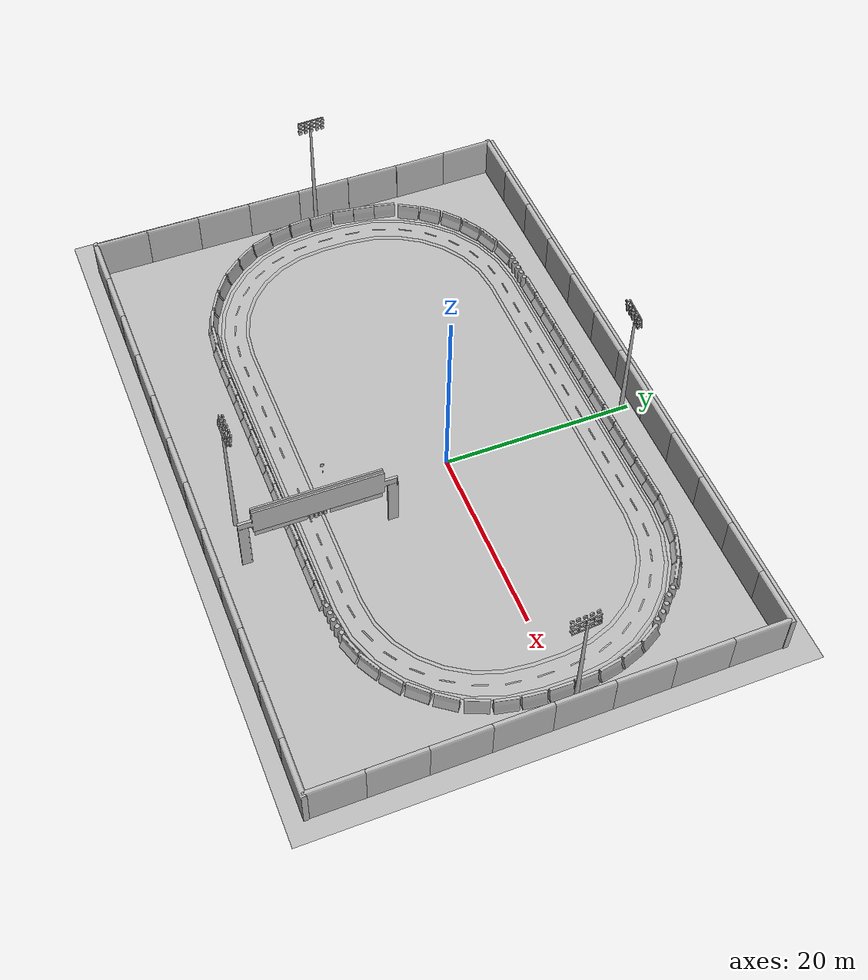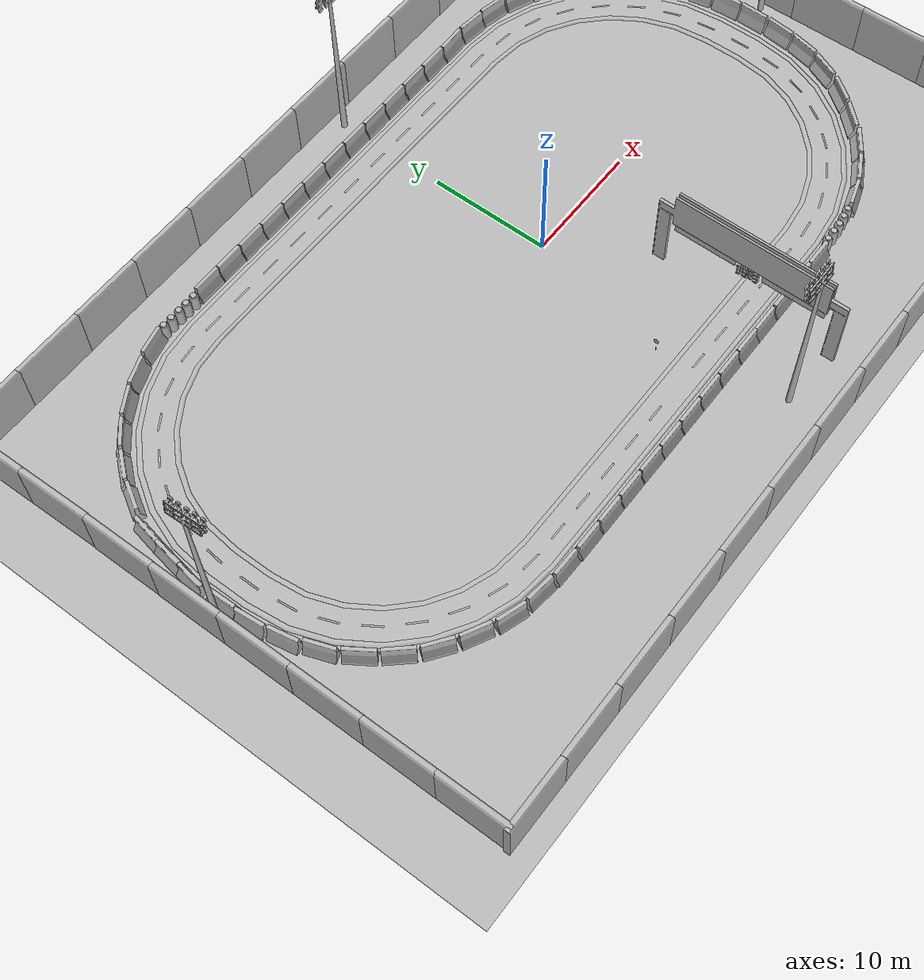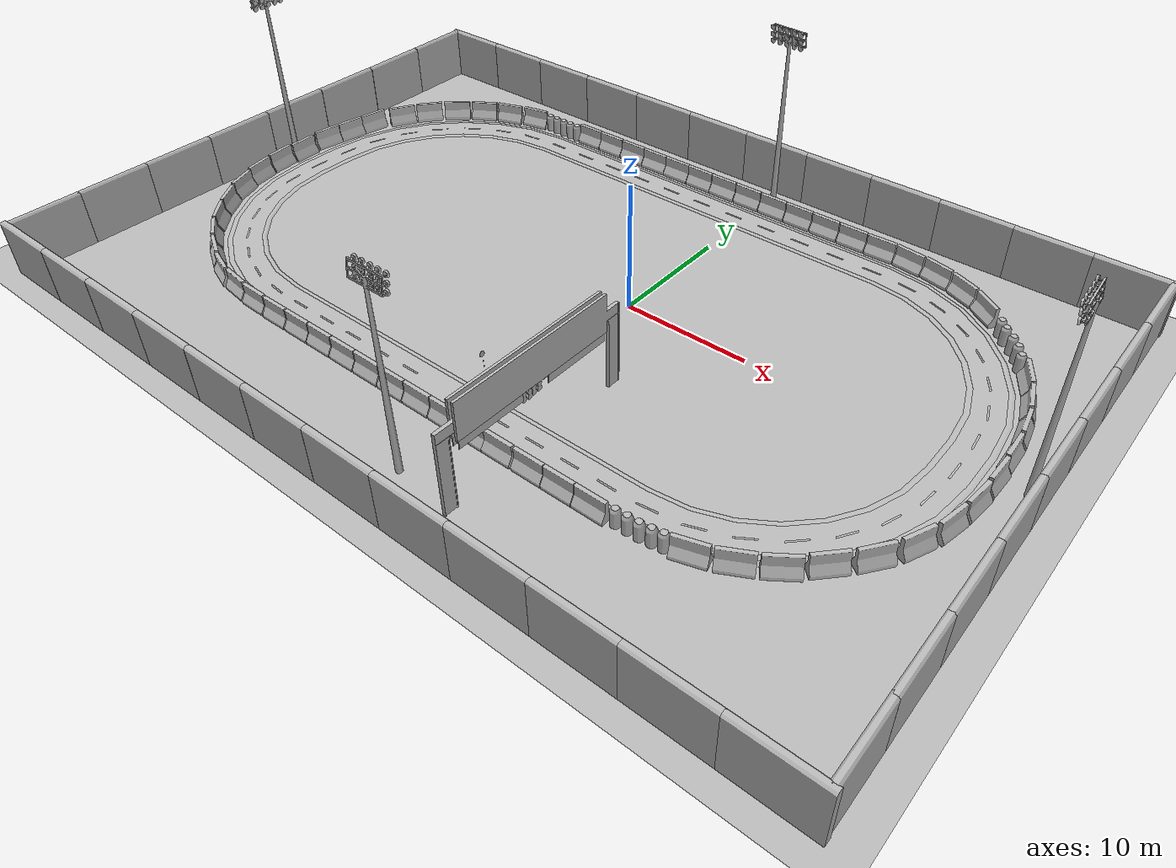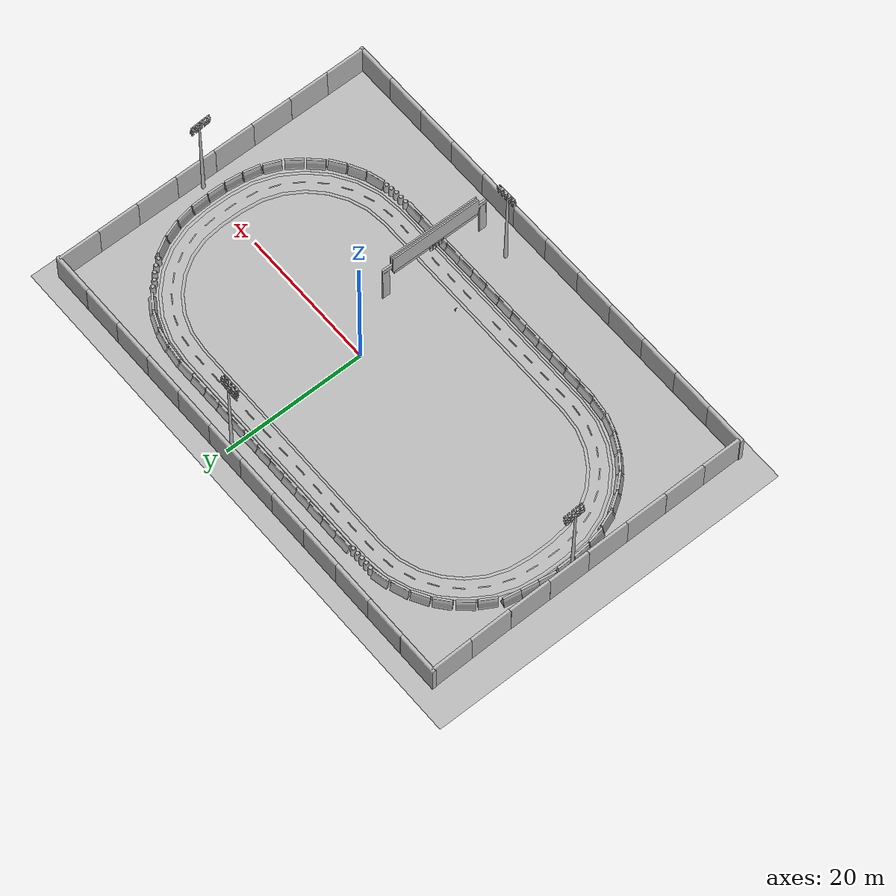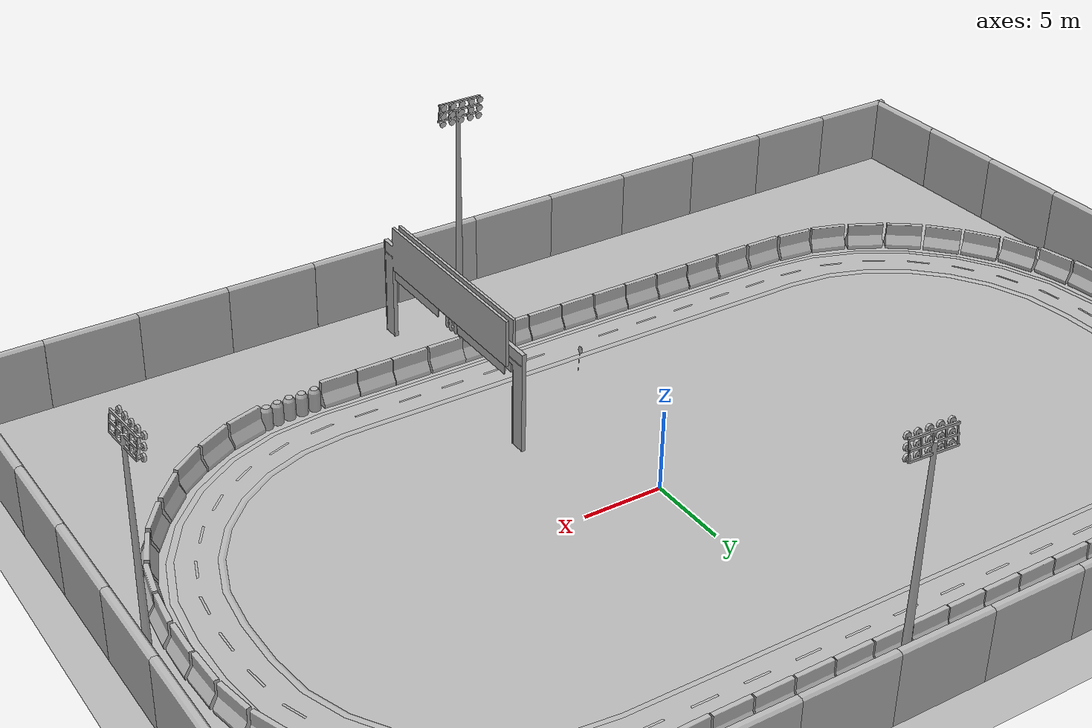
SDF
<sdf version="1.6">
 <world name="default">
  <gravity>0 0 -9.8</gravity>
  <magnetic_field>6e-06 2.3e-05 -4.2e-05</magnetic_field>
  <atmosphere type="adiabatic"/>
  <physics name="default_physics" default="0" type="ode">
   <max_step_size>0.001</max_step_size>
   <real_time_factor>1</real_time_factor>
   <real_time_update_rate>1000</real_time_update_rate>
  </physics>
  <scene><ambient>0.4 0.4 0.4 1</ambient><background>0.7 0.7 0.7 1</background><shadows>1</shadows></scene>
  <spherical_coordinates>
   <surface_model>EARTH_WGS84</surface_model>
   <latitude_deg>0</latitude_deg>
   <longitude_deg>0</longitude_deg>
   <elevation>0</elevation>
   <heading_deg>0</heading_deg>
  </spherical_coordinates>
  <model name="aws_robomaker_racetrack_Billboard_01">
   <include><uri>model://aws_robomaker_racetrack_Billboard_01</uri></include>
   <pose>4.32789 -14.8431 -2e-06 0 1e-06 1.56416</pose>
  </model>
  <model name="aws_robomaker_racetrack_CrashworthBucket_01_10">
   <include><uri>model://aws_robomaker_racetrack_CrashworthBucket_01</uri></include>
   <pose>22.2917 13.5697 0 0 -0 0</pose>
  </model>
  <model name="aws_robomaker_racetrack_CrashworthBucket_01_11">
   <include><uri>model://aws_robomaker_racetrack_CrashworthBucket_01</uri></include>
   <pose>22.9018 12.8693 0.054 0 0 0</pose>
  </model>
  <model name="aws_robomaker_racetrack_CrashworthBucket_01_29">
   <include><uri>model://aws_robomaker_racetrack_CrashworthBucket_01</uri></include>
   <pose>23.6827 12.1956 0.054 0 0 0</pose>
  </model>
  <model name="aws_robomaker_racetrack_CrashworthBucket_01_30">
   <include><uri>model://aws_robomaker_racetrack_CrashworthBucket_01</uri></include>
   <pose>24.3346 11.4874 0.054 0 0 0</pose>
  </model>
  <model name="aws_robomaker_racetrack_CrashworthBucket_01_31">
   <include><uri>model://aws_robomaker_racetrack_CrashworthBucket_01</uri></include>
   <pose>24.8882 10.6788 0.054 0 0 0</pose>
  </model>
  <model name="aws_robomaker_racetrack_FenceMesh_01_00">
   <include><uri>model://aws_robomaker_racetrack_FenceMesh_01</uri></include>
   <pose>4.2331 -11.1761 5.05223 0 0 -0.006038</pose>
  </model>
  <model name="aws_robomaker_racetrack_FenceMesh_01_01">
   <include><uri>model://aws_robomaker_racetrack_FenceMesh_01</uri></include>
   <pose>4.16406 -18.6269 5.05223 0 0 -0.006038</pose>
  </model>
  <model name="aws_robomaker_racetrack_FenceMesh_01_02">
   <include><uri>model://aws_robomaker_racetrack_FenceMesh_01</uri></include>
   <pose>4.63223 -18.6067 5.05223 0 0 -0.006038</pose>
  </model>
  <model name="aws_robomaker_racetrack_FenceMesh_01_03">
   <include><uri>model://aws_robomaker_racetrack_FenceMesh_01</uri></include>
   <pose>4.67467 -11.1966 5.05223 0 0 -0.006038</pose>
  </model>
  <model name="aws_robomaker_racetrack_RaceStartLight_01_00">
   <include><uri>model://aws_robomaker_racetrack_RaceStartLight_01</uri></include>
   <pose>4.13359 -14.1692 5.08709 0 -0 0</pose>
  </model>
  <model name="aws_robomaker_racetrack_RaceStartLight_01_01">
   <include><uri>model://aws_robomaker_racetrack_RaceStartLight_01</uri></include>
   <pose>4.14665 -14.6522 5.08709 0 -0 0</pose>
  </model>
  <model name="aws_robomaker_racetrack_RaceStartLight_01_02">
   <include><uri>model://aws_robomaker_racetrack_RaceStartLight_01</uri></include>
   <pose>4.21676 -15.0918 5.08709 0 -0 0</pose>
  </model>
  <model name="aws_robomaker_racetrack_RaceStartLight_01_03">
   <include><uri>model://aws_robomaker_racetrack_RaceStartLight_01</uri></include>
   <pose>4.17594 -15.5526 5.08709 0 -0 0</pose>
  </model>
  <model name="aws_robomaker_racetrack_StonePier_custom_01">
   <include><uri>model://aws_robomaker_racetrack_StonePier_01</uri></include>
   <pose>8.644873 17.2043 0.054 0 -0.0 0.010048</pose>
  </model>
  <model name="aws_robomaker_racetrack_StonePier_custom_02">
   <include><uri>model://aws_robomaker_racetrack_StonePier_01</uri></include>
   <pose>6.194090 17.2043 0.054 0 -0.0 0.010048</pose>
  </model>
  <model name="aws_robomaker_racetrack_StonePier_custom_03">
   <include><uri>model://aws_robomaker_racetrack_StonePier_01</uri></include>
   <pose>3.746000 17.2043 0.054 0 -0.0 0.010048</pose>
  </model>
  <model name="aws_robomaker_racetrack_StonePier_custom_04">
   <include><uri>model://aws_robomaker_racetrack_StonePier_01</uri></include>
   <pose>1.313230 17.2043 0.054 0 -0.0 0.010048</pose>
  </model>
  <model name="aws_robomaker_racetrack_StonePier_custom_05">
   <include><uri>model://aws_robomaker_racetrack_StonePier_01</uri></include>
   <pose>-1.116790 17.2043 0.054 0 -0.0 0.010048</pose>
  </model>
  <model name="aws_robomaker_racetrack_StonePier_custom_06">
   <include><uri>model://aws_robomaker_racetrack_StonePier_01</uri></include>
   <pose>-3.547695 17.2043 0.054 0 -0.0 0.010048</pose>
  </model>
  <model name="aws_robomaker_racetrack_StonePier_custom_07">
   <include><uri>model://aws_robomaker_racetrack_StonePier_01</uri></include>
   <pose>-5.953370 17.2043 0.054 0 -0.0 0.010048</pose>
  </model>
  <model name="aws_robomaker_racetrack_StonePier_custom_08">
   <include><uri>model://aws_robomaker_racetrack_StonePier_01</uri></include>
   <pose>-8.360940 17.2043 0.054 0 -0.0 0.010048</pose>
  </model>
  <model name="aws_robomaker_racetrack_StonePier_custom_09">
   <include><uri>model://aws_robomaker_racetrack_StonePier_01</uri></include>
   <pose>-10.773300 17.2043 0.054 0 -0.0 0.010048</pose>
  </model>
  <model name="aws_robomaker_racetrack_StonePier_custom_10">
   <include><uri>model://aws_robomaker_racetrack_StonePier_01</uri></include>
   <pose>-13.188203 17.2043 0.054 0 -0.0 0.010048</pose>
  </model>
  <model name="aws_robomaker_racetrack_StonePier_custom_11">
   <include><uri>model://aws_robomaker_racetrack_StonePier_01</uri></include>
   <pose>-15.627900 17.2043 0.054 0 -0.0 0.010048</pose>
  </model>
  <model name="aws_robomaker_racetrack_StonePier_custom_12">
   <include><uri>model://aws_robomaker_racetrack_StonePier_01</uri></include>
   <pose>-18.044000 17.2043 0.054 0 -0.0 0.010048</pose>
  </model>
  <model name="aws_robomaker_racetrack_CrashworthBucket_custom_01">
   <include><uri>model://aws_robomaker_racetrack_CrashworthBucket_01</uri></include>
   <pose>-22.847500 17.055900 0 0 0 0</pose>
  </model>
  <model name="aws_robomaker_racetrack_CrashworthBucket_custom_02">
   <include><uri>model://aws_robomaker_racetrack_CrashworthBucket_01</uri></include>
   <pose>-22.062670 17.055900 0 0 0 0</pose>
  </model>
  <model name="aws_robomaker_racetrack_CrashworthBucket_custom_03">
   <include><uri>model://aws_robomaker_racetrack_CrashworthBucket_01</uri></include>
   <pose>-21.245270 17.055900 0 0 0 0</pose>
  </model>
  <model name="aws_robomaker_racetrack_CrashworthBucket_custom_04">
   <include><uri>model://aws_robomaker_racetrack_CrashworthBucket_01</uri></include>
   <pose>-20.468481 17.055900 0 0 0 0</pose>
  </model>
  <model name="aws_robomaker_racetrack_CrashworthBucket_custom_05">
   <include><uri>model://aws_robomaker_racetrack_CrashworthBucket_01</uri></include>
   <pose>-19.667800 17.055900 0 0 0 0</pose>
  </model>
  <model name="aws_robomaker_racetrack_CrashworthBucket_custom_21">
   <include><uri>model://aws_robomaker_racetrack_CrashworthBucket_01</uri></include>
   <pose>15.722000 -16.747800 0 0 0 0</pose>
  </model>
  <model name="aws_robomaker_racetrack_CrashworthBucket_custom_22">
   <include><uri>model://aws_robomaker_racetrack_CrashworthBucket_01</uri></include>
   <pose>14.965000 -16.879200 0 0 0 0</pose>
  </model>
  <model name="aws_robomaker_racetrack_CrashworthBucket_custom_23">
   <include><uri>model://aws_robomaker_racetrack_CrashworthBucket_01</uri></include>
   <pose>14.151800 -16.982200 0 0 0 0</pose>
  </model>
  <model name="aws_robomaker_racetrack_CrashworthBucket_custom_24">
   <include><uri>model://aws_robomaker_racetrack_CrashworthBucket_01</uri></include>
   <pose>13.336900 -17.012200 0 0 0 0</pose>
  </model>
  <model name="aws_robomaker_racetrack_CrashworthBucket_custom_25">
   <include><uri>model://aws_robomaker_racetrack_CrashworthBucket_01</uri></include>
   <pose>12.489900 -17.042300 0 0 0 0</pose>
  </model>
  <model name="aws_robomaker_racetrack_StonePier_01_05">
   <include><uri>model://aws_robomaker_racetrack_StonePier_01</uri></include>
   <pose>11.0892 17.2043 0.054 0 -0.0 0.029389</pose>
  </model>
  <model name="aws_robomaker_racetrack_StonePier_01_06">
   <include><uri>model://aws_robomaker_racetrack_StonePier_01</uri></include>
   <pose>13.5633 17.1121 0.054 0 -0.0 -0.108086</pose>
  </model>
  <model name="aws_robomaker_racetrack_StonePier_01_07">
   <include><uri>model://aws_robomaker_racetrack_StonePier_01</uri></include>
   <pose>16.0013 16.8104 0.054 0 -0.0 -0.206147</pose>
  </model>
  <model name="aws_robomaker_racetrack_StonePier_01_08">
   <include><uri>model://aws_robomaker_racetrack_StonePier_01</uri></include>
   <pose>18.4263 16.0384 0.054 0 -0.0 -0.379591</pose>
  </model>
  <model name="aws_robomaker_racetrack_StonePier_01_16">
   <include><uri>model://aws_robomaker_racetrack_StonePier_01</uri></include>
   <pose>28.1211 -0.475719 0.054 0 -0.0 -1.59506</pose>
  </model>
  <model name="aws_robomaker_racetrack_StonePier_01_18">
   <include><uri>model://aws_robomaker_racetrack_StonePier_01</uri></include>
   <pose>28.0027 -3.03906 0.054 0 -0.0 -1.68291</pose>
  </model>
  <model name="aws_robomaker_racetrack_StonePier_01_21">
   <include><uri>model://aws_robomaker_racetrack_StonePier_01</uri></include>
   <pose>17.2914 -16.4156 0.054 0 -0.0 0.298911</pose>
  </model>
  <model name="aws_robomaker_racetrack_StonePier_01_22">
   <include><uri>model://aws_robomaker_racetrack_StonePier_01</uri></include>
   <pose>19.6208 -15.4615 0.054 0 -0.0 0.489077</pose>
  </model>
  <model name="aws_robomaker_racetrack_StonePier_01_23">
   <include><uri>model://aws_robomaker_racetrack_StonePier_01</uri></include>
   <pose>21.7939 -14.1476 0.054 0 -0.0 0.61668</pose>
  </model>
  <model name="aws_robomaker_racetrack_StonePier_01_24">
   <include><uri>model://aws_robomaker_racetrack_StonePier_01</uri></include>
   <pose>23.6698 -12.3608 0.054 0 -0.0 0.810318</pose>
  </model>
  <model name="aws_robomaker_racetrack_StonePier_01_25">
   <include><uri>model://aws_robomaker_racetrack_StonePier_01</uri></include>
   <pose>25.3929 -10.3347 0.054 -0 -0.0 0.931507</pose>
  </model>
  <model name="aws_robomaker_racetrack_StonePier_01_26">
   <include><uri>model://aws_robomaker_racetrack_StonePier_01</uri></include>
   <pose>27.7466 4.53211 0.054 0 -0.0 1.75246</pose>
  </model>
  <model name="aws_robomaker_racetrack_StonePier_01_27">
   <include><uri>model://aws_robomaker_racetrack_StonePier_01</uri></include>
   <pose>27.0691 6.99271 0.054 0 -0.0 1.91654</pose>
  </model>
  <model name="aws_robomaker_racetrack_StonePier_01_28">
   <include><uri>model://aws_robomaker_racetrack_StonePier_01</uri></include>
   <pose>26.0366 9.29805 0.054 0 -0.0 2.08782</pose>
  </model>
  <model name="aws_robomaker_racetrack_StonePier_01_29">
   <include><uri>model://aws_robomaker_racetrack_StonePier_01</uri></include>
   <pose>26.7385 -7.99231 0.054 -0 -0.0 1.16098</pose>
  </model>
  <model name="aws_robomaker_racetrack_StonePier_01_30">
   <include><uri>model://aws_robomaker_racetrack_StonePier_01</uri></include>
   <pose>27.5962 -5.54706 0.054 0 -0.0 1.36231</pose>
  </model>
  <model name="aws_robomaker_racetrack_StonePier_01_31">
   <include><uri>model://aws_robomaker_racetrack_StonePier_01</uri></include>
   <pose>28.0314 1.9989 0.054 0 -0.0 -1.53351</pose>
  </model>
  <model name="aws_robomaker_racetrack_StonePier_01_32">
   <include><uri>model://aws_robomaker_racetrack_StonePier_01</uri></include>
   <pose>20.6714 14.8473 0.054 0 -0.0 -0.587598</pose>
  </model>
  <model name="aws_robomaker_racetrack_StonePier_01_37">
   <include><uri>model://aws_robomaker_racetrack_StonePier_01</uri></include>
   <pose>-24.4271 16.8105 0.054 -0 -0.0 0.217772</pose>
  </model>
  <model name="aws_robomaker_racetrack_StonePier_01_40">
   <include><uri>model://aws_robomaker_racetrack_StonePier_01</uri></include>
   <pose>-18.3212 -17.1986 0.054 0 -0.0 -0.000165</pose>
  </model>
  <model name="aws_robomaker_racetrack_StonePier_custom_21">
   <include><uri>model://aws_robomaker_racetrack_StonePier_01</uri></include>
   <pose>-15.840300 -17.1986 0.054 0 -0.0 0</pose>
  </model>
  <model name="aws_robomaker_racetrack_StonePier_custom_22">
   <include><uri>model://aws_robomaker_racetrack_StonePier_01</uri></include>
   <pose>-13.410800 -17.1986 0.054 0 -0.0 0</pose>
  </model>
  <model name="aws_robomaker_racetrack_StonePier_custom_23">
   <include><uri>model://aws_robomaker_racetrack_StonePier_01</uri></include>
   <pose>-10.961800 -17.1986 0.054 0 -0.0 0</pose>
  </model>
  <model name="aws_robomaker_racetrack_StonePier_custom_24">
   <include><uri>model://aws_robomaker_racetrack_StonePier_01</uri></include>
   <pose>-8.533970 -17.1986 0.054 0 -0.0 0</pose>
  </model>
  <model name="aws_robomaker_racetrack_StonePier_custom_25">
   <include><uri>model://aws_robomaker_racetrack_StonePier_01</uri></include>
   <pose>-6.086890 -17.1986 0.054 0 -0.0 0</pose>
  </model>
  <model name="aws_robomaker_racetrack_StonePier_custom_26">
   <include><uri>model://aws_robomaker_racetrack_StonePier_01</uri></include>
   <pose>-3.660220 -17.1986 0.054 0 -0.0 0</pose>
  </model>
  <model name="aws_robomaker_racetrack_StonePier_custom_27">
   <include><uri>model://aws_robomaker_racetrack_StonePier_01</uri></include>
   <pose>-1.234060 -17.1986 0.054 0 -0.0 0</pose>
  </model>
  <model name="aws_robomaker_racetrack_StonePier_custom_28">
   <include><uri>model://aws_robomaker_racetrack_StonePier_01</uri></include>
   <pose>1.183090 -17.1986 0.054 0 -0.0 0</pose>
  </model>
  <model name="aws_robomaker_racetrack_StonePier_custom_29">
   <include><uri>model://aws_robomaker_racetrack_StonePier_01</uri></include>
   <pose>3.519140 -17.1986 0.054 0 -0.0 0</pose>
  </model>
  <model name="aws_robomaker_racetrack_StonePier_custom_30">
   <include><uri>model://aws_robomaker_racetrack_StonePier_01</uri></include>
   <pose>6.019380 -17.1986 0.054 0 -0.0 0</pose>
  </model>
  <model name="aws_robomaker_racetrack_StonePier_custom_31">
   <include><uri>model://aws_robomaker_racetrack_StonePier_01</uri></include>
   <pose>8.421080 -17.1986 0.054 0 -0.0 0</pose>
  </model>
  <model name="aws_robomaker_racetrack_StonePier_custom_32">
   <include><uri>model://aws_robomaker_racetrack_StonePier_01</uri></include>
   <pose>10.827000 -17.1986 0.054 0 -0.0 0</pose>
  </model>
  <model name="aws_robomaker_racetrack_StonePier_01_52">
   <include><uri>model://aws_robomaker_racetrack_StonePier_01</uri></include>
   <pose>-28.2666 -15.3279 0.054 0 0.00036 -0.483595</pose>
  </model>
  <model name="aws_robomaker_racetrack_StonePier_01_53">
   <include><uri>model://aws_robomaker_racetrack_StonePier_01</uri></include>
   <pose>-30.4813 -13.931 0.054 0 -0.0 2.50624</pose>
  </model>
  <model name="aws_robomaker_racetrack_StonePier_01_54">
   <include><uri>model://aws_robomaker_racetrack_StonePier_01</uri></include>
   <pose>-32.3931 -12.181 0.054 0 -0.0 2.30053</pose>
  </model>
  <model name="aws_robomaker_racetrack_StonePier_01_55">
   <include><uri>model://aws_robomaker_racetrack_StonePier_01</uri></include>
   <pose>-33.9725 -10.1825 0.054 0 -0.0 2.15404</pose>
  </model>
  <model name="aws_robomaker_racetrack_StonePier_01_56">
   <include><uri>model://aws_robomaker_racetrack_StonePier_01</uri></include>
   <pose>-35.2144 -7.92381 0.054 0 -0.0 1.91826</pose>
  </model>
  <model name="aws_robomaker_racetrack_StonePier_01_57">
   <include><uri>model://aws_robomaker_racetrack_StonePier_01</uri></include>
   <pose>-36.4999 -3.03273 0.054 -0 0.00036 -1.47965</pose>
  </model>
  <model name="aws_robomaker_racetrack_StonePier_01_58">
   <include><uri>model://aws_robomaker_racetrack_StonePier_01</uri></include>
   <pose>-36.5369 -0.578473 -0.000468 -0 0.000348 1.59189</pose>
  </model>
  <model name="aws_robomaker_racetrack_StonePier_01_59">
   <include><uri>model://aws_robomaker_racetrack_StonePier_01</uri></include>
   <pose>-36.0789 -5.53149 0.054 0 -0.0 1.76121</pose>
  </model>
  <model name="aws_robomaker_racetrack_StonePier_01_60">
   <include><uri>model://aws_robomaker_racetrack_StonePier_01</uri></include>
   <pose>-36.5742 2.13483 -4.9e-05 -4.8e-05 -6.2e-05 1.40891</pose>
  </model>
  <model name="aws_robomaker_racetrack_StonePier_01_61">
   <include><uri>model://aws_robomaker_racetrack_StonePier_01</uri></include>
   <pose>-36.1891 4.48288 0.000698 -7e-05 -0.000662 1.40758</pose>
  </model>
  <model name="aws_robomaker_racetrack_StonePier_01_62">
   <include><uri>model://aws_robomaker_racetrack_StonePier_01</uri></include>
   <pose>-35.7706 6.79941 0.00067 5.5e-05 0.000534 1.37633</pose>
  </model>
  <model name="aws_robomaker_racetrack_StonePier_01_63">
   <include><uri>model://aws_robomaker_racetrack_StonePier_01</uri></include>
   <pose>-34.5101 9.28526 0.054 0 -0.0 1.03684</pose>
  </model>
  <model name="aws_robomaker_racetrack_StonePier_01_64">
   <include><uri>model://aws_robomaker_racetrack_StonePier_01</uri></include>
   <pose>-33.1083 11.4014 0.054 0 -0.0 0.877747</pose>
  </model>
  <model name="aws_robomaker_racetrack_StonePier_01_65">
   <include><uri>model://aws_robomaker_racetrack_StonePier_01</uri></include>
   <pose>-31.2882 13.312 0.054 -0 -0.0 0.701782</pose>
  </model>
  <model name="aws_robomaker_racetrack_StonePier_01_66">
   <include><uri>model://aws_robomaker_racetrack_StonePier_01</uri></include>
   <pose>-29.1909 14.829 0.054 0 -0.0 0.529025</pose>
  </model>
  <model name="aws_robomaker_racetrack_StonePier_01_67">
   <include><uri>model://aws_robomaker_racetrack_StonePier_01</uri></include>
   <pose>-26.9181 15.9588 0.054 0 -0.0 0.349577</pose>
  </model>
  <model name="aws_robomaker_racetrack_StonePier_01_68">
   <include><uri>model://aws_robomaker_racetrack_StonePier_01</uri></include>
   <pose>-20.8526 -17.1365 0.054 -0 0.00036 -0.016586</pose>
  </model>
  <model name="aws_robomaker_racetrack_StonePier_01_69">
   <include><uri>model://aws_robomaker_racetrack_StonePier_01</uri></include>
   <pose>-23.3756 -16.9024 0.054 0 -0.0 -0.119704</pose>
  </model>
  <model name="aws_robomaker_racetrack_StonePier_01_70">
   <include><uri>model://aws_robomaker_racetrack_StonePier_01</uri></include>
   <pose>-25.8909 -16.4126 0.054 0 -0.0 -0.32217</pose>
  </model>
  <model name="aws_robomaker_racetrack_StopSign_01_00">
   <include><uri>model://aws_robomaker_racetrack_StopSign_01</uri></include>
   <pose>-2.7487 -12.1054 0.000775 0.075944 0.005053 -1.56731</pose>
  </model>
  <model name="aws_robomaker_racetrack_Track_05_00">
   <include><uri>model://aws_robomaker_racetrack_Track_05</uri></include>
   <pose>0 0 0.051 0 -0 0</pose>
  </model>
  <model name="aws_robomaker_racetrack_Trackline_01_00">
   <include><uri>model://aws_robomaker_racetrack_Trackline_01</uri></include>
   <pose>-4.24539 0 0.102 0 -0 0</pose>
  </model>
  <model name="aws_robomaker_racetrack_Ground_01_00">
   <include><uri>model://aws_robomaker_racetrack_Ground_01</uri></include>
   <pose>-4.9 -2 0.05 0 -0 0</pose>
  </model>
  <model name="aws_robomaker_racetrack_Light_01_00">
   <include><uri>model://aws_robomaker_racetrack_Light_01</uri></include>
   <pose>-0.355802 -21.7691 0 0 -0 0</pose>
  </model>
  <model name="aws_robomaker_racetrack_Light_01_01">
   <include><uri>model://aws_robomaker_racetrack_Light_01</uri></include>
   <pose>0.041158 19.0887 0 0 -0 3.09146</pose>
  </model>
  <model name="aws_robomaker_racetrack_Light_01_02">
   <include><uri>model://aws_robomaker_racetrack_Light_01</uri></include>
   <pose>29.8469 -0.049215 0 0 -0 1.63215</pose>
  </model>
  <model name="aws_robomaker_racetrack_Light_01_03">
   <include><uri>model://aws_robomaker_racetrack_Light_01</uri></include>
   <pose>-37.2567 -0.808964 0 0 0 -1.52672</pose>
  </model>
  <model name="aws_robomaker_racetrack_Wall_01_00">
   <include><uri>model://aws_robomaker_racetrack_Wall_01</uri></include>
   <pose>10.772 20.6862 0 0 -0 0</pose>
  </model>
  <model name="aws_robomaker_racetrack_Wall_01_01">
   <include><uri>model://aws_robomaker_racetrack_Wall_01</uri></include>
   <pose>4.94795 20.6846 0 0 -0 0</pose>
  </model>
  <model name="aws_robomaker_racetrack_Wall_01_02">
   <include><uri>model://aws_robomaker_racetrack_Wall_01</uri></include>
   <pose>-0.883158 20.684 0 0 -0 0</pose>
  </model>
  <model name="aws_robomaker_racetrack_Wall_01_03">
   <include><uri>model://aws_robomaker_racetrack_Wall_01</uri></include>
   <pose>-6.71068 20.6834 0 0 -0 0</pose>
  </model>
  <model name="aws_robomaker_racetrack_Wall_01_04">
   <include><uri>model://aws_robomaker_racetrack_Wall_01</uri></include>
   <pose>-12.5489 20.683 0 0 -0 0</pose>
  </model>
  <model name="aws_robomaker_racetrack_Wall_01_05">
   <include><uri>model://aws_robomaker_racetrack_Wall_01</uri></include>
   <pose>-18.3809 20.685 0 0 -0 0</pose>
  </model>
  <model name="aws_robomaker_racetrack_Wall_01_06">
   <include><uri>model://aws_robomaker_racetrack_Wall_01</uri></include>
   <pose>-24.2154 20.6835 0 0 -0 0</pose>
  </model>
  <model name="aws_robomaker_racetrack_Wall_01_07">
   <include><uri>model://aws_robomaker_racetrack_Wall_01</uri></include>
   <pose>-30.0218 20.682 0 0 -0 0</pose>
  </model>
  <model name="aws_robomaker_racetrack_Wall_01_08">
   <include><uri>model://aws_robomaker_racetrack_Wall_01</uri></include>
   <pose>-35.8134 20.6795 0 0 -0 0</pose>
  </model>
  <model name="aws_robomaker_racetrack_Wall_01_09">
   <include><uri>model://aws_robomaker_racetrack_Wall_01</uri></include>
   <pose>-35.6316 -25.5235 0 0 -0 3.14066</pose>
  </model>
  <model name="aws_robomaker_racetrack_Wall_01_10">
   <include><uri>model://aws_robomaker_racetrack_Wall_01</uri></include>
   <pose>-29.8183 -25.5224 0 0 -0 0</pose>
  </model>
  <model name="aws_robomaker_racetrack_Wall_01_11">
   <include><uri>model://aws_robomaker_racetrack_Wall_01</uri></include>
   <pose>-23.9919 -25.5182 0 0 -0 0</pose>
  </model>
  <model name="aws_robomaker_racetrack_Wall_01_12">
   <include><uri>model://aws_robomaker_racetrack_Wall_01</uri></include>
   <pose>-18.1656 -25.5178 0 0 -0 0</pose>
  </model>
  <model name="aws_robomaker_racetrack_Wall_01_13">
   <include><uri>model://aws_robomaker_racetrack_Wall_01</uri></include>
   <pose>-12.3608 -25.513 0 0 -0 0</pose>
  </model>
  <model name="aws_robomaker_racetrack_Wall_01_14">
   <include><uri>model://aws_robomaker_racetrack_Wall_01</uri></include>
   <pose>-6.53417 -25.5081 0 0 -0 0</pose>
  </model>
  <model name="aws_robomaker_racetrack_Wall_01_15">
   <include><uri>model://aws_robomaker_racetrack_Wall_01</uri></include>
   <pose>-0.701372 -25.5056 0 0 -0 0</pose>
  </model>
  <model name="aws_robomaker_racetrack_Wall_01_16">
   <include><uri>model://aws_robomaker_racetrack_Wall_01</uri></include>
   <pose>5.12343 -25.507 0 0 -0 0</pose>
  </model>
  <model name="aws_robomaker_racetrack_Wall_01_17">
   <include><uri>model://aws_robomaker_racetrack_Wall_01</uri></include>
   <pose>10.9489 -25.511 0 0 -0 0</pose>
  </model>
  <model name="aws_robomaker_racetrack_Wall_01_18">
   <include><uri>model://aws_robomaker_racetrack_Wall_01</uri></include>
   <pose>16.7552 -25.5119 0 0 -0 0</pose>
  </model>
  <model name="aws_robomaker_racetrack_Wall_01_19">
   <include><uri>model://aws_robomaker_racetrack_Wall_01</uri></include>
   <pose>22.5772 -25.5071 0 0 -0 0</pose>
  </model>
  <model name="aws_robomaker_racetrack_Wall_01_20">
   <include><uri>model://aws_robomaker_racetrack_Wall_01</uri></include>
   <pose>28.3975 -25.5099 0 0 -0 0</pose>
  </model>
  <model name="aws_robomaker_racetrack_Wall_01_21">
   <include><uri>model://aws_robomaker_racetrack_Wall_01</uri></include>
   <pose>16.5737 20.6849 0 0 -0 0</pose>
  </model>
  <model name="aws_robomaker_racetrack_Wall_01_22">
   <include><uri>model://aws_robomaker_racetrack_Wall_01</uri></include>
   <pose>22.3987 20.6806 0 0 -0 0</pose>
  </model>
  <model name="aws_robomaker_racetrack_Wall_01_23">
   <include><uri>model://aws_robomaker_racetrack_Wall_01</uri></include>
   <pose>28.2373 20.6833 0 0 -0 0</pose>
  </model>
  <model name="aws_robomaker_racetrack_Wall_01_24">
   <include><uri>model://aws_robomaker_racetrack_Wall_01</uri></include>
   <pose>-38.3722 17.8758 0 0 -0 1.58903</pose>
  </model>
  <model name="aws_robomaker_racetrack_Wall_01_25">
   <include><uri>model://aws_robomaker_racetrack_Wall_01</uri></include>
   <pose>-38.2759 12.1211 0 0 -0 1.58713</pose>
  </model>
  <model name="aws_robomaker_racetrack_Wall_01_26">
   <include><uri>model://aws_robomaker_racetrack_Wall_01</uri></include>
   <pose>-38.2483 6.29377 0 0 -0 1.57459</pose>
  </model>
  <model name="aws_robomaker_racetrack_Wall_01_27">
   <include><uri>model://aws_robomaker_racetrack_Wall_01</uri></include>
   <pose>-38.2488 0.480728 0 0 -0 1.57459</pose>
  </model>
  <model name="aws_robomaker_racetrack_Wall_01_28">
   <include><uri>model://aws_robomaker_racetrack_Wall_01</uri></include>
   <pose>-38.2283 -5.33883 0 0 -0 1.57459</pose>
  </model>
  <model name="aws_robomaker_racetrack_Wall_01_29">
   <include><uri>model://aws_robomaker_racetrack_Wall_01</uri></include>
   <pose>-38.2023 -11.1666 0 0 -0 1.57459</pose>
  </model>
  <model name="aws_robomaker_racetrack_Wall_01_30">
   <include><uri>model://aws_robomaker_racetrack_Wall_01</uri></include>
   <pose>-38.1849 -16.999 0 0 -0 1.57459</pose>
  </model>
  <model name="aws_robomaker_racetrack_Wall_01_31">
   <include><uri>model://aws_robomaker_racetrack_Wall_01</uri></include>
   <pose>-38.1615 -22.7433 0 0 -0 1.57459</pose>
  </model>
  <model name="aws_robomaker_racetrack_Wall_01_32">
   <include><uri>model://aws_robomaker_racetrack_Wall_01</uri></include>
   <pose>30.9522 -17.1105 0 0 -0 1.57459</pose>
  </model>
  <model name="aws_robomaker_racetrack_Wall_01_33">
   <include><uri>model://aws_robomaker_racetrack_Wall_01</uri></include>
   <pose>30.9711 -22.7005 0 0 -0 1.57459</pose>
  </model>
  <model name="aws_robomaker_racetrack_Wall_01_34">
   <include><uri>model://aws_robomaker_racetrack_Wall_01</uri></include>
   <pose>30.9317 -11.3127 0 0 -0 1.57459</pose>
  </model>
  <model name="aws_robomaker_racetrack_Wall_01_35">
   <include><uri>model://aws_robomaker_racetrack_Wall_01</uri></include>
   <pose>30.9092 -5.49982 0 0 -0 1.57459</pose>
  </model>
  <model name="aws_robomaker_racetrack_Wall_01_36">
   <include><uri>model://aws_robomaker_racetrack_Wall_01</uri></include>
   <pose>30.8878 0.333623 0 0 -0 1.57459</pose>
  </model>
  <model name="aws_robomaker_racetrack_Wall_01_37">
   <include><uri>model://aws_robomaker_racetrack_Wall_01</uri></include>
   <pose>30.8663 6.16983 0 0 -0 1.57459</pose>
  </model>
  <model name="aws_robomaker_racetrack_Wall_01_38">
   <include><uri>model://aws_robomaker_racetrack_Wall_01</uri></include>
   <pose>30.8445 11.977 0 0 -0 1.57459</pose>
  </model>
  <model name="aws_robomaker_racetrack_Wall_01_39">
   <include><uri>model://aws_robomaker_racetrack_Wall_01</uri></include>
   <pose>30.8212 17.8155 0 0 -0 1.57459</pose>
  </model>
  <model name="ground_plane">
   <pose>0 0 -1 0 -0 0</pose>
   <scale>1 1 1</scale>
   <link name="link">
    <pose>0 0 -1 0 -0 0</pose>
    <velocity>0 0 0 0 -0 0</velocity>
    <acceleration>0 0 0 0 -0 0</acceleration>
   </link>
  </model>
  <light name="sun" type="directional">
   <pose>0 0 10 0 0 0</pose>
   <diffuse>1 1 1 1</diffuse>
   <specular>1 1 1 1</specular>
   <attenuation>
    <range>1000</range>
    <constant>0.9</constant>
    <linear>0.01</linear>
    <quadratic>0.001</quadratic>
   </attenuation>
   <direction>-0.5 0.1 -0.9</direction>
  </light>
  <light name="sun2" type="directional">
   <pose>0 0 10 0 0 0</pose>
   <diffuse>1 1 1 1</diffuse>
   <specular>1 1 1 1</specular>
   <attenuation>
    <range>1000</range>
    <constant>0.9</constant>
    <linear>0.01</linear>
    <quadratic>0.001</quadratic>
   </attenuation>
   <direction>-0.5 0.1 -0.9</direction>
  </light>
  <light name="user_point_light_0" type="point">
   <pose>1.49278 -15.5363 1 0 -0 0</pose>
   <diffuse>0 0.98039 0 1</diffuse>
   <specular>0.1 0.1 0.1 1</specular>
   <attenuation>
    <range>0.3</range>
    <constant>0.02</constant>
    <linear>0.01</linear>
    <quadratic>0</quadratic>
   </attenuation>
   <cast_shadows>0</cast_shadows>
   <direction>0 0 -1</direction>
  </light>
  <light name="user_point_light_1" type="point">
   <pose>6.99411 -11.55 1 0 -0 0</pose>
   <diffuse>0 0.98039 0 1</diffuse>
   <specular>0.1 0.1 0.1 1</specular>
   <attenuation>
    <range>0.3</range>
    <constant>0.02</constant>
    <linear>0.01</linear>
    <quadratic>0</quadratic>
   </attenuation>
   <cast_shadows>0</cast_shadows>
   <direction>0 0 -1</direction>
  </light>
  <light name="user_point_light_2" type="point">
   <pose>5.65528 -14.8924 1 0 -0 0</pose>
   <diffuse>0 0.98039 0 1</diffuse>
   <specular>0.1 0.1 0.1 1</specular>
   <attenuation>
    <range>0.3</range>
    <constant>0.02</constant>
    <linear>0.01</linear>
    <quadratic>0</quadratic>
   </attenuation>
   <cast_shadows>0</cast_shadows>
   <direction>0 0 -1</direction>
  </light>
  <light name="user_point_light_3" type="point">
   <pose>3.6452 -17.3437 1 0 -0 0</pose>
   <diffuse>0 0.98039 0 1</diffuse>
   <specular>0.1 0.1 0.1 1</specular>
   <attenuation>
    <range>0.3</range>
    <constant>0.02</constant>
    <linear>0.01</linear>
    <quadratic>0</quadratic>
   </attenuation>
   <cast_shadows>0</cast_shadows>
   <direction>0 0 -1</direction>
  </light>
 </world>
</sdf>

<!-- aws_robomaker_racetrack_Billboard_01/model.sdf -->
<sdf version='1.6'>
  <model name='aws_Billboard_01'>
    <link name='body'>
      <pose frame=''>0 0 0 0 -0 0</pose>
      <self_collide>0</self_collide>
      <kinematic>0</kinematic>
      <gravity>1</gravity>
      <inertial>
        <mass>1000</mass>
        <pose frame=''>0 0 0 0 -0 0</pose>
        <inertia>
          <ixx>1</ixx>
          <ixy>0</ixy>
          <ixz>0</ixz>
          <iyy>1</iyy>
          <iyz>0</iyz>
          <izz>1</izz>
        </inertia>
      </inertial>
      <visual name='visual'>
        <geometry>
          <mesh>
            <uri>models/aws_robomaker_racetrack_Billboard_01/meshes/aws_Billboard_01_visual.obj</uri>
            <scale>0.01 0.01 0.01</scale>
          </mesh>
        </geometry>
        <material>
          <shader type='pixel'>
            <normal_map>__default__</normal_map>
          </shader>
        </material>
        <pose frame=''>0 0 0 0 -0 0</pose>
        <cast_shadows>1</cast_shadows>
        <transparency>0</transparency>
        <meta>
          <layer>2</layer>
        </meta>
      </visual>

    </link>
    <static>true</static>
  </model>
</sdf>

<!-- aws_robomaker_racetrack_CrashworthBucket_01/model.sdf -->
<sdf version='1.6'>
  <model name='aws_CrashworthBucket_01'>
    <link name='body'>
      <pose frame=''>0 0 0 0 -0 0</pose>
      <self_collide>0</self_collide>
      <kinematic>0</kinematic>
      <gravity>1</gravity>
      <inertial>
        <mass>5</mass>
        <pose frame=''>0 0 0 0 -0 0</pose>
        <inertia>
          <ixx>1</ixx>
          <ixy>0</ixy>
          <ixz>0</ixz>
          <iyy>1</iyy>
          <iyz>0</iyz>
          <izz>1</izz>
        </inertia>
      </inertial>
      <visual name='visual'>
        <geometry>
          <mesh>
            <uri>file://models/aws_robomaker_racetrack_CrashworthBucket_01/meshes/aws_CrashworthBucket_01_visual.obj</uri>
            <scale>0.01 0.01  0.01 </scale>
          </mesh>
        </geometry>
        <material>
          <shader type='pixel'>
            <normal_map>__default__</normal_map>
          </shader>
        </material>
        <pose frame=''>0 0 0 0 -0 0</pose>
        <cast_shadows>1</cast_shadows>
        <transparency>0</transparency>
        <meta>
          <layer>0</layer>
        </meta>
      </visual>
      <collision name='collision_0'>
        <laser_retro>0</laser_retro>
        <max_contacts>10</max_contacts>
        <pose frame=''>0 0 0 0 -0 0</pose>
        <geometry>
          <mesh>
            <uri>file://models/aws_robomaker_racetrack_CrashworthBucket_01/meshes/aws_CrashworthBucket_01_collision.obj</uri>
            <scale>0.01 0.01  0.01 </scale>
          </mesh>
        </geometry>
        <surface>
          <friction>
            <ode>
              <mu>1</mu>
              <mu2>1</mu2>
              <fdir1>0 0 0</fdir1>
              <slip1>0</slip1>
              <slip2>0</slip2>
            </ode>
            <torsional>
              <coefficient>1</coefficient>
              <patch_radius>0</patch_radius>
              <surface_radius>0</surface_radius>
              <use_patch_radius>1</use_patch_radius>
              <ode>
                <slip>0</slip>
              </ode>
            </torsional>
          </friction>
          <bounce>
            <restitution_coefficient>0</restitution_coefficient>
            <threshold>1e+06</threshold>
          </bounce>
          <contact>
            <collide_without_contact>0</collide_without_contact>
            <collide_without_contact_bitmask>1</collide_without_contact_bitmask>
            <collide_bitmask>1</collide_bitmask>
            <ode>
              <soft_cfm>0</soft_cfm>
              <soft_erp>0.2</soft_erp>
              <kp>1e+13</kp>
              <kd>1</kd>
              <max_vel>0.01</max_vel>
              <min_depth>0</min_depth>
            </ode>
            <bullet>
              <split_impulse>1</split_impulse>
              <split_impulse_penetration_threshold>-0.01</split_impulse_penetration_threshold>
              <soft_cfm>0</soft_cfm>
              <soft_erp>0.2</soft_erp>
              <kp>1e+13</kp>
              <kd>1</kd>
            </bullet>
          </contact>
        </surface>
      </collision>
    </link>
    <static>true</static>
  </model>
</sdf>

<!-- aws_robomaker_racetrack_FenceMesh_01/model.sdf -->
<sdf version='1.6'>
  <model name='aws_FenceMesh_01'>
    <link name='body'>
      <pose frame=''>0 0 0 0 -0 0</pose>
      <inertial>
        <mass>1</mass>
        <pose frame=''>0 0 0 0 -0 0</pose>
        <inertia>
          <ixx>1</ixx>
          <ixy>0</ixy>
          <ixz>0</ixz>
          <iyy>1</iyy>
          <iyz>0</iyz>
          <izz>1</izz>
        </inertia>
      </inertial>
      <self_collide>0</self_collide>
      <kinematic>0</kinematic>
      <gravity>1</gravity>
      <visual name='visual'>
        <geometry>
          <mesh>
            <uri>file://models/aws_robomaker_racetrack_FenceMesh_01/meshes/aws_FenceMesh_01_visual.obj</uri>
            <scale>0.01 0.01 0.01</scale>
          </mesh>
        </geometry>
        <material>
          <shader type='pixel'>
            <normal_map>__default__</normal_map>
          </shader>
        </material>
        <pose frame=''>0 0 0 0 -0 0</pose>
        <cast_shadows>1</cast_shadows>
        <transparency>0</transparency>
        <meta>
          <layer>2</layer>
        </meta>
      </visual>
      <collision name='collision_0'>
        <laser_retro>0</laser_retro>
        <max_contacts>10</max_contacts>
        <pose frame=''>0 0 0 0 -0 0</pose>
        <geometry>
          <mesh>
            <uri>file://models/aws_robomaker_racetrack_FenceMesh_01/meshes/aws_FenceMesh_01_collision.obj</uri>
            <scale>0.01 0.01 0.01</scale>
          </mesh>
        </geometry>
        <surface>
          <friction>
            <ode>
              <mu>1</mu>
              <mu2>1</mu2>
              <fdir1>0 0 0</fdir1>
              <slip1>0</slip1>
              <slip2>0</slip2>
            </ode>
            <torsional>
              <coefficient>1</coefficient>
              <patch_radius>0</patch_radius>
              <surface_radius>0</surface_radius>
              <use_patch_radius>1</use_patch_radius>
              <ode>
                <slip>0</slip>
              </ode>
            </torsional>
          </friction>
          <bounce>
            <restitution_coefficient>0</restitution_coefficient>
            <threshold>1e+06</threshold>
          </bounce>
          <contact>
            <collide_without_contact>0</collide_without_contact>
            <collide_without_contact_bitmask>1</collide_without_contact_bitmask>
            <collide_bitmask>2</collide_bitmask>
            <ode>
              <soft_cfm>0</soft_cfm>
              <soft_erp>0.2</soft_erp>
              <kp>1e+13</kp>
              <kd>1</kd>
              <max_vel>0.01</max_vel>
              <min_depth>0</min_depth>
            </ode>
            <bullet>
              <split_impulse>1</split_impulse>
              <split_impulse_penetration_threshold>-0.01</split_impulse_penetration_threshold>
              <soft_cfm>0</soft_cfm>
              <soft_erp>0.2</soft_erp>
              <kp>1e+13</kp>
              <kd>1</kd>
            </bullet>
          </contact>
        </surface>
      </collision>
    </link>
    <static>1</static>
    <allow_auto_disable>1</allow_auto_disable>
  </model>
</sdf>

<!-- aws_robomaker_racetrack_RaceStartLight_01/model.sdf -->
<sdf version='1.6'>
  <model name='aws_RaceStartLight_01'>
    <link name='body'>
      <pose frame=''>0 0 0 0 -0 0</pose>
      <inertial>
        <mass>1</mass>
        <pose frame=''>0 0 0 0 -0 0</pose>
        <inertia>
          <ixx>1</ixx>
          <ixy>0</ixy>
          <ixz>0</ixz>
          <iyy>1</iyy>
          <iyz>0</iyz>
          <izz>1</izz>
        </inertia>
      </inertial>
      <self_collide>0</self_collide>
      <kinematic>0</kinematic>
      <gravity>1</gravity>
      <visual name='visual'>
        <geometry>
          <mesh>
            <uri>file://models/aws_robomaker_racetrack_RaceStartLight_01/meshes/aws_RaceStartLight_01_visual.obj</uri>
            <scale>0.01 0.01 0.01</scale>
          </mesh>
        </geometry>
        <material>
          <shader type='pixel'>
            <normal_map>__default__</normal_map>
          </shader>
        </material>
        <pose frame=''>0 0 0 0 -0 0</pose>
        <cast_shadows>1</cast_shadows>
        <transparency>0</transparency>
        <meta>
          <layer>2</layer>
        </meta>
      </visual>
      <collision name='collision_1'>
        <laser_retro>0</laser_retro>
        <max_contacts>10</max_contacts>
        <pose frame=''>0 0 0 0 -0 0</pose>
        <geometry>
          <mesh>
            <uri>file://models/aws_robomaker_racetrack_RaceStartLight_01/meshes/aws_RaceStartLight_01_collision.obj</uri>
            <scale>0.01 0.01 0.01</scale>
          </mesh>
        </geometry>
        <surface>
          <friction>
            <ode>
              <mu>1</mu>
              <mu2>1</mu2>
              <fdir1>0 0 0</fdir1>
              <slip1>0</slip1>
              <slip2>0</slip2>
            </ode>
            <torsional>
              <coefficient>1</coefficient>
              <patch_radius>0</patch_radius>
              <surface_radius>0</surface_radius>
              <use_patch_radius>1</use_patch_radius>
              <ode>
                <slip>0</slip>
              </ode>
            </torsional>
          </friction>
          <bounce>
            <restitution_coefficient>0</restitution_coefficient>
            <threshold>1e+06</threshold>
          </bounce>
          <contact>
            <collide_without_contact>0</collide_without_contact>
            <collide_without_contact_bitmask>1</collide_without_contact_bitmask>
            <collide_bitmask>2</collide_bitmask>
            <ode>
              <soft_cfm>0</soft_cfm>
              <soft_erp>0.2</soft_erp>
              <kp>1e+13</kp>
              <kd>1</kd>
              <max_vel>0.01</max_vel>
              <min_depth>0</min_depth>
            </ode>
            <bullet>
              <split_impulse>1</split_impulse>
              <split_impulse_penetration_threshold>-0.01</split_impulse_penetration_threshold>
              <soft_cfm>0</soft_cfm>
              <soft_erp>0.2</soft_erp>
              <kp>1e+13</kp>
              <kd>1</kd>
            </bullet>
          </contact>
        </surface>
      </collision>
    </link>
    <static>1</static>
    <allow_auto_disable>1</allow_auto_disable>
  </model>
</sdf>

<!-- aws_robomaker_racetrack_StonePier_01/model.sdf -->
<sdf version='1.6'>
  <model name='aws_StonePier_01'>
    <link name='body'>
      <pose frame=''>0 0 0 0 -0 0</pose>
      <self_collide>0</self_collide>
      <kinematic>0</kinematic>
      <gravity>1</gravity>
      <inertial>
        <mass>10</mass>
        <pose frame=''>0 0 0 0 -0 0</pose>
        <inertia>
          <ixx>0</ixx>
          <ixy>0</ixy>
          <ixz>0</ixz>
          <iyy>0</iyy>
          <iyz>0</iyz>
          <izz>0</izz>
        </inertia>
      </inertial>
      <visual name='visual'>
        <geometry>
          <mesh>
            <uri>file://models/aws_robomaker_racetrack_StonePier_01/meshes/aws_StonePier_01_visual.obj</uri>
            <scale>0.01 0.01 0.01</scale>
          </mesh>
        </geometry>
        <material>
          <shader type='pixel'>
            <normal_map>__default__</normal_map>
          </shader>
        </material>
        <pose frame=''>0 0 0 0 -0 0</pose>
        <cast_shadows>1</cast_shadows>
        <transparency>0</transparency>
        <meta>
          <layer>0</layer>
        </meta>
      </visual>
      <collision name='collision_0'>
        <laser_retro>0</laser_retro>
        <max_contacts>10</max_contacts>
        <pose frame=''>0 0 0 0 -0 0</pose>
        <geometry>
          <mesh>
            <uri>file://models/aws_robomaker_racetrack_StonePier_01/meshes/aws_StonePier_01_collision.obj</uri>
            <scale>0.01 0.01 0.01</scale>
          </mesh>
        </geometry>
        <surface>
          <friction>
            <ode>
              <mu>1</mu>
              <mu2>1</mu2>
              <fdir1>0 0 0</fdir1>
              <slip1>0</slip1>
              <slip2>0</slip2>
            </ode>
            <torsional>
              <coefficient>1</coefficient>
              <patch_radius>0</patch_radius>
              <surface_radius>0</surface_radius>
              <use_patch_radius>1</use_patch_radius>
              <ode>
                <slip>0</slip>
              </ode>
            </torsional>
          </friction>
          <bounce>
            <restitution_coefficient>0</restitution_coefficient>
            <threshold>1e+06</threshold>
          </bounce>
          <contact>
            <collide_without_contact>0</collide_without_contact>
            <collide_without_contact_bitmask>1</collide_without_contact_bitmask>
            <collide_bitmask>1</collide_bitmask>
            <ode>
              <soft_cfm>0</soft_cfm>
              <soft_erp>0.2</soft_erp>
              <kp>1e+13</kp>
              <kd>1</kd>
              <max_vel>0.01</max_vel>
              <min_depth>0</min_depth>
            </ode>
            <bullet>
              <split_impulse>1</split_impulse>
              <split_impulse_penetration_threshold>-0.01</split_impulse_penetration_threshold>
              <soft_cfm>0</soft_cfm>
              <soft_erp>0.2</soft_erp>
              <kp>1e+13</kp>
              <kd>1</kd>
            </bullet>
          </contact>
        </surface>
      </collision>
    </link>
  <static>1</static>
  </model>
</sdf>

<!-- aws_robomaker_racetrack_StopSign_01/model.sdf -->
<sdf version='1.6'>
  <model name='aws_StopSign_01'>
    <link name='body'>
      <pose frame=''>0 0 0 0 -0 0</pose>
      <self_collide>0</self_collide>
      <kinematic>0</kinematic>
      <gravity>1</gravity>
      <inertial>
        <mass>2</mass>
        <pose frame=''>0 0 0 0 -0 0</pose>
        <inertia>
          <ixx>1</ixx>
          <ixy>0</ixy>
          <ixz>0</ixz>
          <iyy>1</iyy>
          <iyz>0</iyz>
          <izz>1</izz>
        </inertia>
      </inertial>
      <visual name='visual'>
        <geometry>
          <mesh>
            <uri>file://models/aws_robomaker_racetrack_StopSign_01/meshes/aws_StopSign_01_visual.obj</uri>
            <scale>0.01 0.01 0.01</scale>
          </mesh>
        </geometry>
        <material>
          <shader type='pixel'>
            <normal_map>__default__</normal_map>
          </shader>
        </material>
        <pose frame=''>0 0 0 0 -0 0</pose>
        <cast_shadows>1</cast_shadows>
        <transparency>0</transparency>
        <meta>
          <layer>0</layer>
        </meta>
      </visual>
      <collision name='collision_0'>
        <laser_retro>0</laser_retro>
        <max_contacts>10</max_contacts>
        <pose frame=''>0 0 0 0 -0 0</pose>
        <geometry>
          <mesh>
            <uri>file://models/aws_robomaker_racetrack_StopSign_01/meshes/aws_StopSign_01_collision.obj</uri>
            <scale>0.01 0.01 0.01</scale>
          </mesh>
        </geometry>
        <surface>
          <friction>
            <ode>
              <mu>1</mu>
              <mu2>1</mu2>
              <fdir1>0 0 0</fdir1>
              <slip1>0</slip1>
              <slip2>0</slip2>
            </ode>
            <torsional>
              <coefficient>1</coefficient>
              <patch_radius>0</patch_radius>
              <surface_radius>0</surface_radius>
              <use_patch_radius>1</use_patch_radius>
              <ode>
                <slip>0</slip>
              </ode>
            </torsional>
          </friction>
          <bounce>
            <restitution_coefficient>0</restitution_coefficient>
            <threshold>1e+06</threshold>
          </bounce>
          <contact>
            <collide_without_contact>0</collide_without_contact>
            <collide_without_contact_bitmask>1</collide_without_contact_bitmask>
            <collide_bitmask>1</collide_bitmask>
            <ode>
              <soft_cfm>0</soft_cfm>
              <soft_erp>0.2</soft_erp>
              <kp>1e+13</kp>
              <kd>1</kd>
              <max_vel>0.01</max_vel>
              <min_depth>0</min_depth>
            </ode>
            <bullet>
              <split_impulse>1</split_impulse>
              <split_impulse_penetration_threshold>-0.01</split_impulse_penetration_threshold>
              <soft_cfm>0</soft_cfm>
              <soft_erp>0.2</soft_erp>
              <kp>1e+13</kp>
              <kd>1</kd>
            </bullet>
          </contact>
        </surface>
      </collision>
    </link>
    <static>true</static>
  </model>
</sdf>

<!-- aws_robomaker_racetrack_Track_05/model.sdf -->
<sdf version='1.6'>

  <model name='aws_Track_05_border'>

     <link name='body_border'>
      <pose frame=''>0 0 0 0 -0 0</pose>
      <self_collide>0</self_collide>
      <kinematic>0</kinematic>
      <gravity>1</gravity>
      <inertial>
        <mass>1000</mass>
        <pose frame=''>0 0 0 0 -0 0</pose>
        <inertia>
          <ixx>1</ixx>
          <ixy>0</ixy>
          <ixz>0</ixz>
          <iyy>1</iyy>
          <iyz>0</iyz>
          <izz>1</izz>
        </inertia>
      </inertial>
      <visual name='visual'>
        <geometry>
          <mesh>
            <uri>file://models/aws_robomaker_racetrack_Track_05/meshes/aws_Track_05_visual_border.obj</uri>
            <scale>1 1 1</scale>
          </mesh>
        </geometry>
        <material>
          <shader type='pixel'>
            <normal_map>__default__</normal_map>
          </shader>
        </material>
        <pose frame=''>0 0 0 0 -0 0</pose>
        <cast_shadows>1</cast_shadows>
        <transparency>0</transparency>
        <meta>
          <layer>0</layer>
        </meta>
      </visual>

       <collision name='collision_0'>
        <laser_retro>0</laser_retro>
        <max_contacts>10</max_contacts>
        <pose frame=''>0 0 0 0 -0 0</pose>
        <geometry>
          <mesh>
            <uri>file://models/aws_robomaker_racetrack_Track_05/meshes/aws_Track_05_visual_border.obj</uri>
            <scale>1 1 1</scale>
          </mesh>
        </geometry>
        <surface>
          <friction>
            <ode>
              <mu>1</mu>
              <mu2>1</mu2>
              <fdir1>0 0 0</fdir1>
              <slip1>0</slip1>
              <slip2>0</slip2>
            </ode>
            <torsional>
              <coefficient>1</coefficient>
              <patch_radius>0</patch_radius>
              <surface_radius>0</surface_radius>
              <use_patch_radius>1</use_patch_radius>
              <ode>
                <slip>0</slip>
              </ode>
            </torsional>
          </friction>
          <bounce>
            <restitution_coefficient>0</restitution_coefficient>
            <threshold>1e+06</threshold>
          </bounce>
          <contact>
            <collide_without_contact>0</collide_without_contact>
            <collide_without_contact_bitmask>1</collide_without_contact_bitmask>
            <collide_bitmask>1</collide_bitmask>
            <ode>
              <soft_cfm>0</soft_cfm>
              <soft_erp>0.2</soft_erp>
              <kp>1e+13</kp>
              <kd>1</kd>
              <max_vel>0.01</max_vel>
              <min_depth>0</min_depth>
            </ode>
            <bullet>
              <split_impulse>1</split_impulse>
              <split_impulse_penetration_threshold>-0.01</split_impulse_penetration_threshold>
              <soft_cfm>0</soft_cfm>
              <soft_erp>0.2</soft_erp>
              <kp>1e+13</kp>
              <kd>1</kd>
            </bullet>
          </contact>
        </surface>
      </collision>

    </link>
  </model>

   <model name='aws_Track_05_border'>

     <link name='body_border'>
      <pose frame=''>0 0 0 0 -0 0</pose>
      <self_collide>0</self_collide>
      <kinematic>0</kinematic>
      <gravity>1</gravity>
      <inertial>
        <mass>1000</mass>
        <pose frame=''>0 0 0 0 -0 0</pose>
        <inertia>
          <ixx>1</ixx>
          <ixy>0</ixy>
          <ixz>0</ixz>
          <iyy>1</iyy>
          <iyz>0</iyz>
          <izz>1</izz>
        </inertia>
      </inertial>
      <visual name='visual'>
        <geometry>
          <mesh>
            <uri>file://models/aws_robomaker_racetrack_Track_05/meshes/aws_Track_05_visual_track.obj</uri>
            <scale>1 1 1</scale>
          </mesh>
        </geometry>
        <material>
          <shader type='pixel'>
            <normal_map>__default__</normal_map>
          </shader>
        </material>
        <pose frame=''>0 0 0 0 -0 0</pose>
        <cast_shadows>1</cast_shadows>
        <transparency>0</transparency>
        <meta>
          <layer>0</layer>
        </meta>
      </visual>
       <collision name='collision_0'>
        <laser_retro>0</laser_retro>
        <max_contacts>10</max_contacts>
        <pose frame=''>0 0 0 0 -0 0</pose>
        <geometry>
          <mesh>
            <uri>file://models/aws_robomaker_racetrack_Track_05/meshes/aws_Track_05_visual_track.obj</uri>
            <scale>1 1 1</scale>
          </mesh>
        </geometry>
        <surface>
          <friction>
            <ode>
              <mu>1</mu>
              <mu2>1</mu2>
              <fdir1>0 0 0</fdir1>
              <slip1>0</slip1>
              <slip2>0</slip2>
            </ode>
            <torsional>
              <coefficient>1</coefficient>
              <patch_radius>0</patch_radius>
              <surface_radius>0</surface_radius>
              <use_patch_radius>1</use_patch_radius>
              <ode>
                <slip>0</slip>
              </ode>
            </torsional>
          </friction>
          <bounce>
            <restitution_coefficient>0</restitution_coefficient>
            <threshold>1e+06</threshold>
          </bounce>
          <contact>
            <collide_without_contact>0</collide_without_contact>
            <collide_without_contact_bitmask>1</collide_without_contact_bitmask>
            <collide_bitmask>1</collide_bitmask>
            <ode>
              <soft_cfm>0</soft_cfm>
              <soft_erp>0.2</soft_erp>
              <kp>1e+13</kp>
              <kd>1</kd>
              <max_vel>0.01</max_vel>
              <min_depth>0</min_depth>
            </ode>
            <bullet>
              <split_impulse>1</split_impulse>
              <split_impulse_penetration_threshold>-0.01</split_impulse_penetration_threshold>
              <soft_cfm>0</soft_cfm>
              <soft_erp>0.2</soft_erp>
              <kp>1e+13</kp>
              <kd>1</kd>
            </bullet>
          </contact>
        </surface>
      </collision>
    </link>
  </model>
</sdf>

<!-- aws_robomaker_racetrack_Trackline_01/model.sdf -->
<sdf version='1.6'>
  <model name='aws_Trackline_01'>
    <link name='body'>
      <pose frame=''>0 0 0 0 -0 0</pose>
      <inertial>
        <mass>0.5</mass>
        <pose frame=''>0 0 0 0 -0 0</pose>
        <inertia>
          <ixx>1</ixx>
          <ixy>0</ixy>
          <ixz>0</ixz>
          <iyy>1</iyy>
          <iyz>0</iyz>
          <izz>1</izz>
        </inertia>
      </inertial>
      <self_collide>0</self_collide>
      <kinematic>0</kinematic>
      <gravity>1</gravity>
      <visual name='visual'>
        <geometry>
          <mesh>
            <uri>file://models/aws_robomaker_racetrack_Trackline_01/meshes/aws_Trackline_01_visual.obj</uri>
            <scale>0.01 0.01 0.01</scale>
          </mesh>
        </geometry>
        <material>
          <shader type='pixel'>
            <normal_map>__default__</normal_map>
          </shader>
        </material>
        <pose frame=''>0 0 0 0 -0 0</pose>
        <cast_shadows>1</cast_shadows>
        <transparency>0</transparency>
        <meta>
          <layer>0</layer>
        </meta>
      </visual>

    </link>
    <static>1</static>
  </model>
</sdf>
